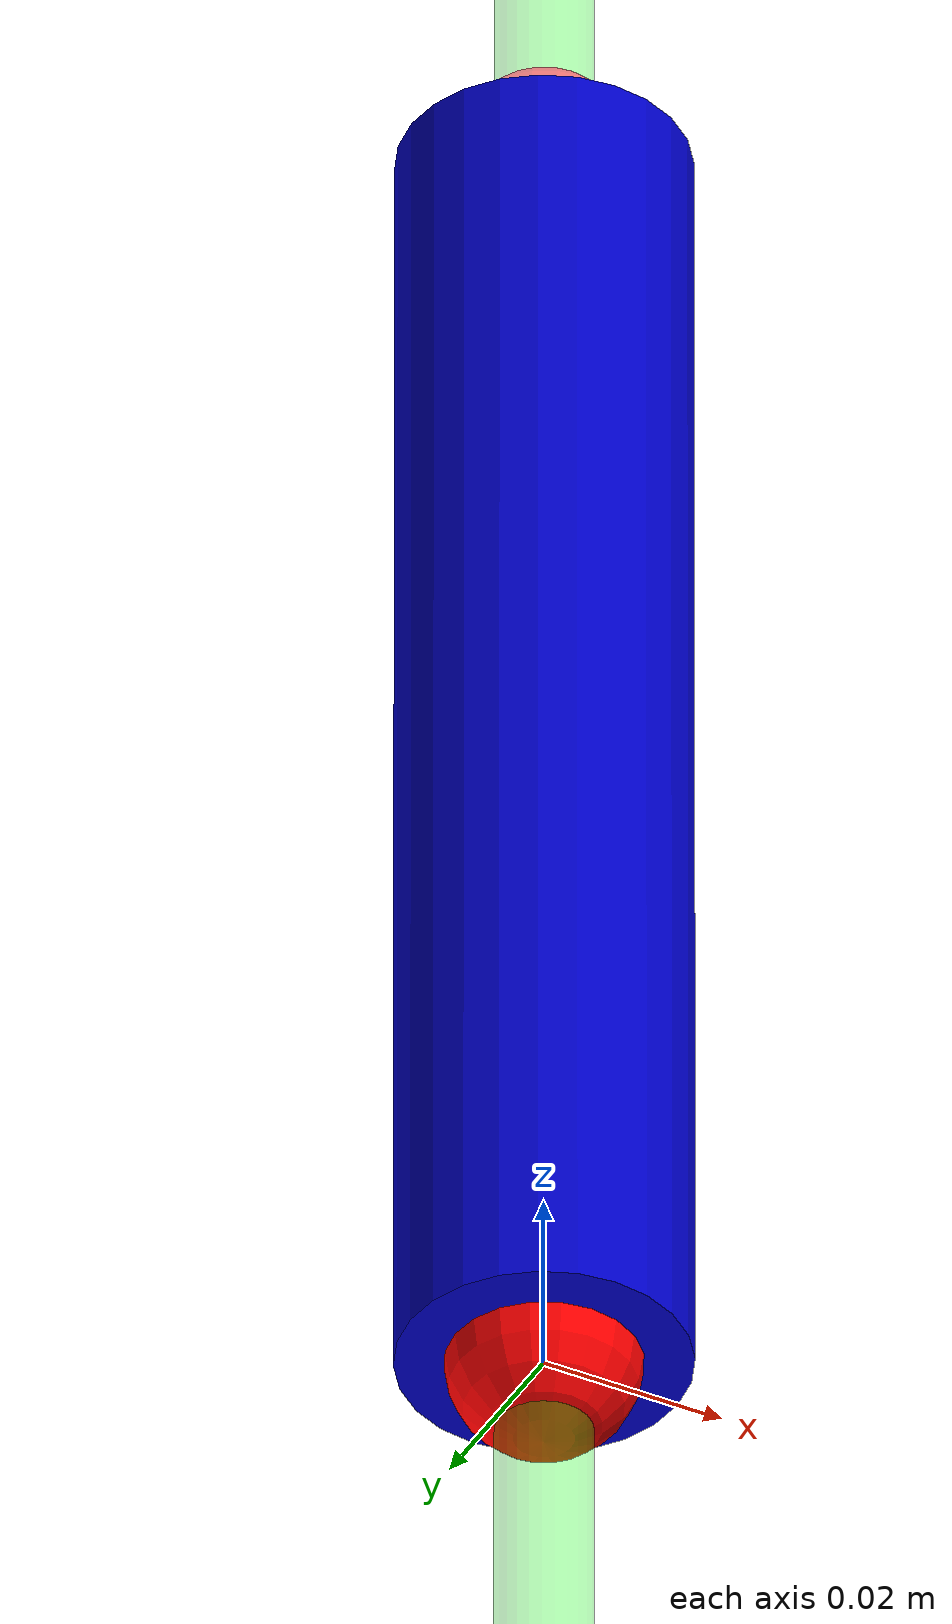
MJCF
<!-- 末端执行器为一个圆柱 -->

<mujoco model="base">

    <worldbody>
        <body name="gripper_base" pos="0 0 0">
            <site name="ft_frame" pos="0 0 0" size="0.01 0.01 0.01" rgba="1 0 0 1" type="sphere" group="1"/>
            <inertial pos="0 0 0" quat="-0.5 0.5 0.5 0.5" mass="0.3" diaginertia="3e-08 2e-08 2e-08" />
            <!-- 圆柱手指 -->
            <geom name="finger" type="cylinder" size="0.015 0.075" pos="0 0 0.075" quat="1 0 0 0" group="1"  contype="0" conaffinity="1" solimp="0.99 0.99 0.001" friction="0.5 0.001 0.001" rgba="0 0 0.8 1"/>

            <!-- This site was added for visualization. -->
            <body name="eef" pos="0 0 0.15" quat="0.707105 0 0 -0.707105">
                <site name="grip_site" pos="0 0 0" size="0.01 0.01 0.01" rgba="1 0 0 0.5" type="sphere" group="1"/>
                <site name="ee_x" pos="0.1 0 0" size="0.005 .1"  quat="0.707105  0 0.707108 0 " rgba="1 0 0 0" type="cylinder" group="1"/>
                <site name="ee_y" pos="0 0.1 0" size="0.005 .1" quat="0.707105 0.707108 0 0" rgba="0 1 0 0" type="cylinder" group="1"/>
                <site name="ee_z" pos="0 0 0.1" size="0.005 .1" quat="1 0 0 0" rgba="0 0 1 0" type="cylinder" group="1"/>
                <!-- This site was added for visualization. -->
                <site name="grip_site_cylinder" pos="0 0 0" size="0.005 10" rgba="0 1 0 0.3" type="cylinder" group="1"/>
            </body>

        </body>
    </worldbody>
    <sensor>
        <force name="force_ee" site="ft_frame"/>
        <torque name="torque_ee" site="ft_frame"/>
    </sensor>
</mujoco>
